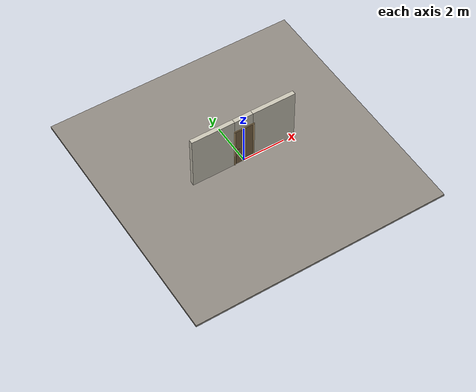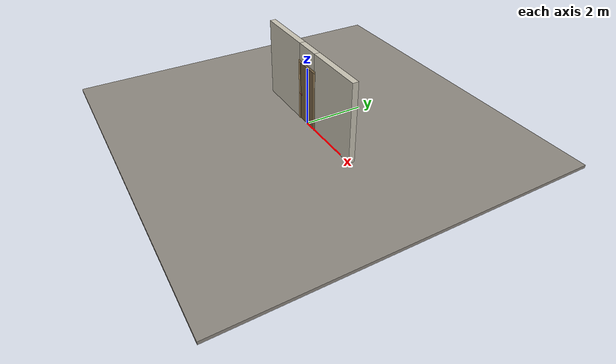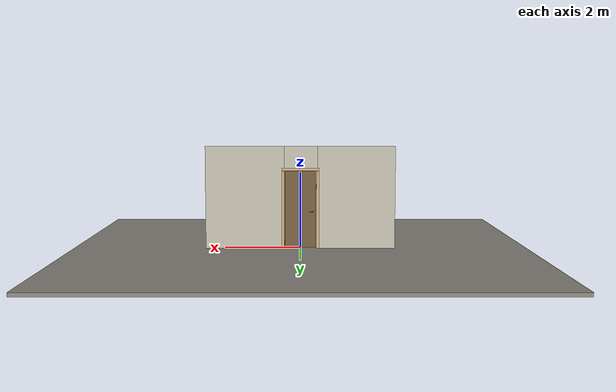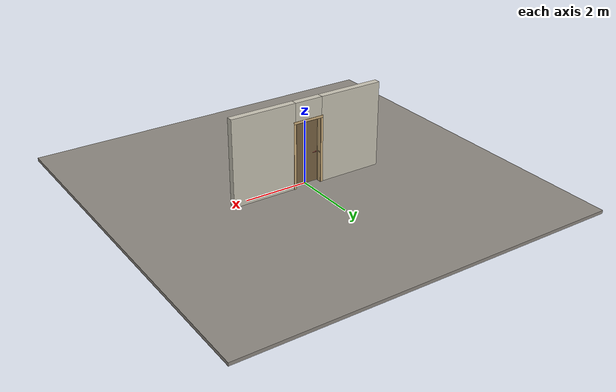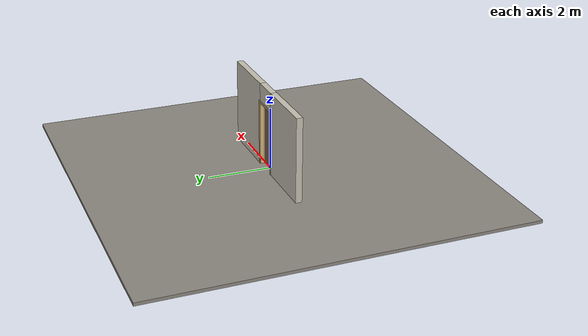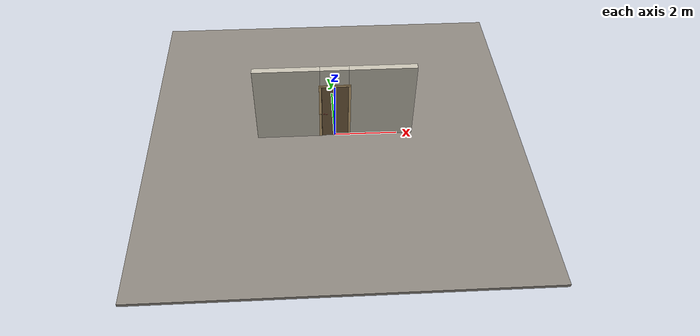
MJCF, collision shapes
<?xml version="1.0" ?>
<mujoco model="db0828_swing_single_full">
  <compiler angle="radian" meshdir="../../hardware" texturedir="../../textures" autolimits="true" inertiafromgeom="false"/>
  <option timestep="0.002" integrator="implicitfast" cone="elliptic" impratio="10" noslip_iterations="3">
    <flag multiccd="enable"/>
  </option>
  <size memory="16M"/>
  <default>
    <geom condim="4" solref="0.005 1" solimp="0.95 0.99 0.001"/>
    <joint solreflimit="0.005 1" solimplimit="0.95 0.99 0.001"/>
    <tendon solreflimit="0.005 1"/>
    <equality solref="0.002 1"/>
  </default>
  <visual>
    <headlight ambient="0.4 0.4 0.4" diffuse="0.7 0.7 0.7" specular="0.2 0.2 0.2"/>
    <quality shadowsize="4096"/>
    <map znear="0.01" zfar="60"/>
  </visual>
  <asset>
    <mesh name="coat_hook_d622d37ad0" file="coat_hook_d622d37ad0.obj"/>
    <mesh name="hinge_96510cf394" file="hinge_96510cf394.obj"/>
    <mesh name="hinge_jamb_7fd4ca52b2" file="hinge_jamb_7fd4ca52b2.obj"/>
    <mesh name="lever_57205841c3" file="lever_57205841c3.obj"/>
    <material name="mat_floor" rgba="0.55 0.53 0.5 1" specular="0.2" shininess="0.15" reflectance="0"/>
    <material name="mat_wall" rgba="0.78 0.76 0.7 1" specular="0.2" shininess="0.1" reflectance="0"/>
    <material name="mat_leaf" rgba="0.469 0.38 0.257 1" specular="0.2" shininess="0.45" reflectance="0"/>
    <material name="mat_leaf_louver" rgba="0.398 0.323 0.219 1" specular="0.2" shininess="0.4" reflectance="0"/>
    <material name="mat_hinge" rgba="0.65 0.66 0.68 1" specular="0.74" shininess="0.5" reflectance="0.36"/>
    <material name="mat_op_black_matte_metal" rgba="0.05 0.05 0.05 1" specular="0.38" shininess="0.3" reflectance="0.12"/>
    <material name="mat_trim" rgba="0.85 0.66 0.3 1" specular="0.8" shininess="0.75" reflectance="0.4"/>
    <material name="mat_bolt" rgba="0.85 0.66 0.3 1" specular="0.8" shininess="0.75" reflectance="0.4"/>
    <material name="mat_frame" rgba="0.82 0.7 0.5 1" specular="0.2" shininess="0.45" reflectance="0"/>
    <material name="mat_hook" rgba="0.9 0.9 0.92 1" specular="0.8" shininess="0.9" reflectance="0.4"/>
    <texture name="skybox" type="skybox" builtin="gradient" rgb1="0.6 0.7 0.85" rgb2="0.9 0.92 0.95" width="256" height="256"/>
  </asset>
  <worldbody>
    <light name="sun" pos="1.5 -2.5 4" dir="-0.3 0.5 -0.8" directional="true" diffuse="0.8 0.8 0.8" specular="0.3 0.3 0.3" castshadow="true"/>
    <light name="fill" pos="-1.5 2.5 3" dir="0.3 -0.5 -0.7" directional="true" diffuse="0.35 0.35 0.4" castshadow="false"/>
    <camera name="robot_view" pos="0 -2.466687 1.734312" xyaxes="1 0 0 0 0.26963 0.962964" fovy="52"/>
    <camera name="far_view" pos="0 2.617687 1.734312" xyaxes="-1 0 0 0 -0.26963 0.962964" fovy="52"/>
    <camera name="iso" pos="-1.932062 -2.059938 2.141063" xyaxes="0.741536 -0.670913 0 0.242917 0.268487 0.932151" fovy="46"/>
    <camera name="detail_handle" pos="-0.07 -0.8725 1.245" xyaxes="0.97561 0.219512 0 -0.070934 0.315262 0.94635" fovy="38"/>
    <geom name="floor" type="box" size="6 6 0.05" pos="0 0 -0.05" material="mat_floor" group="0" contype="1" conaffinity="1" friction="0.8 0.005 0.0001" density="2400"/>
    <geom name="wall_left" type="box" size="1.0205 0.1 1.35" pos="-1.4795 0.0755 1.35" material="mat_wall" group="0" contype="1" conaffinity="1" friction="0.6 0.005 0.0001" density="800"/>
    <geom name="wall_right" type="box" size="1.0355 0.1 1.35" pos="1.4645 0.0755 1.35" material="mat_wall" group="0" contype="1" conaffinity="1" friction="0.6 0.005 0.0001" density="800"/>
    <geom name="wall_header" type="box" size="0.444 0.1 0.303" pos="-0.015 0.0755 2.397" material="mat_wall" group="0" contype="1" conaffinity="1" friction="0.6 0.005 0.0001" density="800"/>
    <geom name="hinge_0_jamb" type="mesh" mesh="hinge_jamb_7fd4ca52b2" pos="0.407 -0.0245 0.259" quat="0 0 1 0" material="mat_hinge" group="1" contype="0" conaffinity="0" density="7850"/>
    <geom name="hinge_1_jamb" type="mesh" mesh="hinge_jamb_7fd4ca52b2" pos="0.407 -0.0245 1.025" quat="0 0 1 0" material="mat_hinge" group="1" contype="0" conaffinity="0" density="7850"/>
    <geom name="hinge_2_jamb" type="mesh" mesh="hinge_jamb_7fd4ca52b2" pos="0.407 -0.0245 1.861" quat="0 0 1 0" material="mat_hinge" group="1" contype="0" conaffinity="0" density="7850"/>
    <geom name="jamb_hinge" type="box" size="0.0095 0.1 1.0225" pos="0.4195 0.0755 1.0225" material="mat_frame" group="0" contype="1" conaffinity="1" friction="0.6 0.005 0.0001" density="400"/>
    <geom name="strike_965_wall_n" type="box" size="0.0245 0.083825 0.0167" pos="-0.4345 0.091675 0.965" material="mat_frame" group="0" contype="1" conaffinity="1" friction="0.6 0.005 0.0001" density="400"/>
    <geom name="strike_965_wall_p" type="box" size="0.0245 0.008 0.0167" pos="-0.4345 -0.01585 0.965" material="mat_frame" group="0" contype="1" conaffinity="1" friction="0.6 0.005 0.0001" density="400"/>
    <geom name="strike_965_ramp" type="box" size="0.0245 0.01649 0.0167" pos="-0.439136 -0.028673 0.965" quat="0.977148 0 0 -0.212558" material="mat_frame" group="0" contype="1" conaffinity="1" friction="0.12 0.005 0.0001" density="400"/>
    <geom name="strike_965_back" type="box" size="0.01615 0.00785 0.0167" pos="-0.44285 0 0.965" material="mat_frame" group="0" contype="1" conaffinity="1" friction="0.6 0.005 0.0001" density="400"/>
    <geom name="jamb_strike_0" type="box" size="0.0245 0.1 0.47415" pos="-0.4345 0.0755 0.47415" material="mat_frame" group="0" contype="1" conaffinity="1" friction="0.6 0.005 0.0001" density="400"/>
    <geom name="jamb_strike_1" type="box" size="0.0245 0.1 0.53165" pos="-0.4345 0.0755 1.51335" material="mat_frame" group="0" contype="1" conaffinity="1" friction="0.6 0.005 0.0001" density="400"/>
    <geom name="jamb_head" type="box" size="0.444 0.1 0.0095" pos="-0.015 0.0755 2.0545" material="mat_frame" group="0" contype="1" conaffinity="1" friction="0.6 0.005 0.0001" density="400"/>
    <geom name="head_stud" type="box" size="0.444 0.1 0.015" pos="-0.015 0.0755 2.079" material="mat_wall" group="0" contype="1" conaffinity="1" friction="0.6 0.005 0.0001" density="500"/>
    <geom name="stop_hinge" type="box" size="0.0055 0.016 1.0225" pos="0.4045 0.034 1.0225" material="mat_frame" group="0" contype="1" conaffinity="1" friction="0.6 0.005 0.0001" density="400"/>
    <geom name="stop_strike" type="box" size="0.0055 0.016 1.0225" pos="-0.4045 0.034 1.0225" material="mat_frame" group="0" contype="1" conaffinity="1" friction="0.6 0.005 0.0001" density="400"/>
    <geom name="stop_head" type="box" size="0.41 0.016 0.0055" pos="0 0.034 2.0395" material="mat_frame" group="0" contype="1" conaffinity="1" friction="0.6 0.005 0.0001" density="400"/>
    <geom name="casing_l_n" type="box" size="0.035 0.008 1.032" pos="-0.459 -0.0325 1.0225" material="mat_frame" group="2" contype="0" conaffinity="0" density="400"/>
    <geom name="casing_r_n" type="box" size="0.035 0.008 1.032" pos="0.459 -0.0325 1.0225" material="mat_frame" group="2" contype="0" conaffinity="0" density="400"/>
    <geom name="casing_h_n" type="box" size="0.494 0.008 0.035" pos="0 -0.0325 2.094" material="mat_frame" group="2" contype="0" conaffinity="0" density="400"/>
    <geom name="casing_l_p" type="box" size="0.035 0.008 1.032" pos="-0.459 0.1835 1.0225" material="mat_frame" group="2" contype="0" conaffinity="0" density="400"/>
    <geom name="casing_r_p" type="box" size="0.035 0.008 1.032" pos="0.459 0.1835 1.0225" material="mat_frame" group="2" contype="0" conaffinity="0" density="400"/>
    <geom name="casing_h_p" type="box" size="0.494 0.008 0.035" pos="0 0.1835 2.094" material="mat_frame" group="2" contype="0" conaffinity="0" density="400"/>
    <site name="approach_point" pos="0 -1.5 0" quat="1 0 0 0" size="0.05" rgba="0.2 0.9 0.2 0.5" group="4"/>
    <site name="goal_point" pos="0 1.5 0" quat="1 0 0 0" size="0.05" rgba="0.2 0.9 0.2 0.5" group="4"/>
    <site name="door_plane_center" pos="0 0 1.0225" quat="1 0 0 0" size="0.02" rgba="0.2 0.9 0.2 0.5" group="4"/>
    <body name="leaf" pos="0.41 0 0">
      <inertial pos="-0.402659 -0.000121 1.02734" mass="24.828351" quat="0.500251 -0.499467 0.500655 0.499627" diaginertia="1.414566551 8.585338296 9.994267288"/>
      <joint name="leaf_hinge" type="hinge" axis="0 0 1" pos="-0.003 -0.0245 0" limited="true" range="0 2.094395" damping="0.210326" frictionloss="0.31633" armature="0.02"/>
      <geom name="leaf_slab" type="box" size="0.4065 0.0175 1.016" pos="-0.4095 0 1.025" material="mat_leaf" group="0" contype="1" conaffinity="1" friction="0.35 0.005 0.0001" density="1"/>
      <geom name="leaf_louver_0" type="box" size="0.3165 0.002 0.026984" pos="-0.4095 0 1.091339" quat="0.953717 0.300706 0 0" material="mat_leaf_louver" group="1" contype="0" conaffinity="0" density="1"/>
      <geom name="leaf_louver_1" type="box" size="0.3165 0.002 0.026984" pos="-0.4095 0 1.142736" quat="0.953717 0.300706 0 0" material="mat_leaf_louver" group="1" contype="0" conaffinity="0" density="1"/>
      <geom name="leaf_louver_2" type="box" size="0.3165 0.002 0.026984" pos="-0.4095 0 1.194134" quat="0.953717 0.300706 0 0" material="mat_leaf_louver" group="1" contype="0" conaffinity="0" density="1"/>
      <geom name="leaf_louver_3" type="box" size="0.3165 0.002 0.026984" pos="-0.4095 0 1.245532" quat="0.953717 0.300706 0 0" material="mat_leaf_louver" group="1" contype="0" conaffinity="0" density="1"/>
      <geom name="leaf_louver_4" type="box" size="0.3165 0.002 0.026984" pos="-0.4095 0 1.296929" quat="0.953717 0.300706 0 0" material="mat_leaf_louver" group="1" contype="0" conaffinity="0" density="1"/>
      <geom name="leaf_louver_5" type="box" size="0.3165 0.002 0.026984" pos="-0.4095 0 1.348327" quat="0.953717 0.300706 0 0" material="mat_leaf_louver" group="1" contype="0" conaffinity="0" density="1"/>
      <geom name="leaf_louver_6" type="box" size="0.3165 0.002 0.026984" pos="-0.4095 0 1.399725" quat="0.953717 0.300706 0 0" material="mat_leaf_louver" group="1" contype="0" conaffinity="0" density="1"/>
      <geom name="leaf_louver_7" type="box" size="0.3165 0.002 0.026984" pos="-0.4095 0 1.451122" quat="0.953717 0.300706 0 0" material="mat_leaf_louver" group="1" contype="0" conaffinity="0" density="1"/>
      <geom name="leaf_louver_8" type="box" size="0.3165 0.002 0.026984" pos="-0.4095 0 1.50252" quat="0.953717 0.300706 0 0" material="mat_leaf_louver" group="1" contype="0" conaffinity="0" density="1"/>
      <geom name="leaf_louver_9" type="box" size="0.3165 0.002 0.026984" pos="-0.4095 0 1.553918" quat="0.953717 0.300706 0 0" material="mat_leaf_louver" group="1" contype="0" conaffinity="0" density="1"/>
      <geom name="leaf_louver_10" type="box" size="0.3165 0.002 0.026984" pos="-0.4095 0 1.605315" quat="0.953717 0.300706 0 0" material="mat_leaf_louver" group="1" contype="0" conaffinity="0" density="1"/>
      <geom name="leaf_louver_11" type="box" size="0.3165 0.002 0.026984" pos="-0.4095 0 1.656713" quat="0.953717 0.300706 0 0" material="mat_leaf_louver" group="1" contype="0" conaffinity="0" density="1"/>
      <geom name="leaf_louver_12" type="box" size="0.3165 0.002 0.026984" pos="-0.4095 0 1.708111" quat="0.953717 0.300706 0 0" material="mat_leaf_louver" group="1" contype="0" conaffinity="0" density="1"/>
      <geom name="leaf_louver_13" type="box" size="0.3165 0.002 0.026984" pos="-0.4095 0 1.759508" quat="0.953717 0.300706 0 0" material="mat_leaf_louver" group="1" contype="0" conaffinity="0" density="1"/>
      <geom name="leaf_louver_14" type="box" size="0.3165 0.002 0.026984" pos="-0.4095 0 1.810906" quat="0.953717 0.300706 0 0" material="mat_leaf_louver" group="1" contype="0" conaffinity="0" density="1"/>
      <geom name="leaf_louver_15" type="box" size="0.3165 0.002 0.026984" pos="-0.4095 0 1.862304" quat="0.953717 0.300706 0 0" material="mat_leaf_louver" group="1" contype="0" conaffinity="0" density="1"/>
      <geom name="leaf_louver_16" type="box" size="0.3165 0.002 0.026984" pos="-0.4095 0 1.913701" quat="0.953717 0.300706 0 0" material="mat_leaf_louver" group="1" contype="0" conaffinity="0" density="1"/>
      <geom name="hinge_0" type="mesh" mesh="hinge_96510cf394" pos="-0.003 -0.0245 0.259" quat="0 0 1 0" material="mat_hinge" group="1" contype="0" conaffinity="0" density="7850"/>
      <geom name="hinge_1" type="mesh" mesh="hinge_96510cf394" pos="-0.003 -0.0245 1.025" quat="0 0 1 0" material="mat_hinge" group="1" contype="0" conaffinity="0" density="7850"/>
      <geom name="hinge_2" type="mesh" mesh="hinge_96510cf394" pos="-0.003 -0.0245 1.861" quat="0 0 1 0" material="mat_hinge" group="1" contype="0" conaffinity="0" density="7850"/>
      <geom name="leaf_latch_bolt_faceplate" type="box" size="0.0006 0.01235 0.0267" pos="-0.8154 0 0.965" material="mat_bolt" group="1" contype="0" conaffinity="0" density="8500"/>
      <geom name="coat_hook" type="mesh" mesh="coat_hook_d622d37ad0" pos="-0.4095 0.0175 1.691" quat="0 0 0.707107 0.707107" material="mat_hook" group="2" contype="0" conaffinity="0" density="7000"/>
      <site name="leaf_edge_mid" pos="-0.816 0 1.016" quat="1 0 0 0" size="0.02" rgba="0.2 0.9 0.2 0.5" group="4"/>
      <body name="leaf_handle" pos="-0.756 0 0.965">
        <inertial pos="0.018609 0 0" mass="0.798454" quat="0.707107 0 0 -0.707107" diaginertia="0.001003601 0.002236545 0.003135681"/>
        <joint name="leaf_handle_hinge" type="hinge" axis="0 1 0" limited="true" range="0 0.87" damping="0.212416" frictionloss="0.042" stiffness="1" springref="-0.35" armature="0.01"/>
        <geom name="leaf_handle_spindle" type="cylinder" size="0.006 0.0255" pos="0 0 0" quat="0.707107 -0.707107 0 0" material="mat_op_black_matte_metal" group="1" contype="0" conaffinity="0" density="7850"/>
        <geom name="leaf_handle_lever_n" type="mesh" mesh="lever_57205841c3" pos="0 -0.0175 0" quat="0 0 -0.707107 0.707107" material="mat_op_black_matte_metal" group="1" contype="0" conaffinity="0" density="3000"/>
        <geom name="leaf_handle_lever_col_n" type="capsule" size="0.007 0.053" pos="0.06 -0.0725 0" quat="0.707107 0 0.707107 0" material="mat_op_black_matte_metal" group="3" contype="1" conaffinity="1" rgba="0.8 0.3 0.3 0.25" friction="0.7 0.01 0.0001" density="3000"/>
        <geom name="leaf_handle_hub_col_n" type="cylinder" size="0.012 0.022" pos="0 -0.0475 0" quat="0.707107 -0.707107 0 0" material="mat_op_black_matte_metal" group="3" contype="1" conaffinity="1" rgba="0.8 0.3 0.3 0.25" friction="0.6 0.005 0.0001" density="3000"/>
        <geom name="leaf_handle_lever_p" type="mesh" mesh="lever_57205841c3" pos="0 0.0175 0" quat="0 0 0.707107 0.707107" material="mat_op_black_matte_metal" group="1" contype="0" conaffinity="0" density="3000"/>
        <geom name="leaf_handle_lever_col_p" type="capsule" size="0.007 0.053" pos="0.06 0.0725 0" quat="0.707107 0 0.707107 0" material="mat_op_black_matte_metal" group="3" contype="1" conaffinity="1" rgba="0.8 0.3 0.3 0.25" friction="0.7 0.01 0.0001" density="3000"/>
        <geom name="leaf_handle_hub_col_p" type="cylinder" size="0.012 0.022" pos="0 0.0475 0" quat="0.707107 -0.707107 0 0" material="mat_op_black_matte_metal" group="3" contype="1" conaffinity="1" rgba="0.8 0.3 0.3 0.25" friction="0.6 0.005 0.0001" density="3000"/>
        <site name="leaf_handle_grip_n" pos="0.096 -0.0725 0" quat="1 0 0 0" size="0.012" rgba="0.2 0.9 0.2 0.5" group="4"/>
        <site name="leaf_handle_grip_p" pos="0.096 0.0725 0" quat="1 0 0 0" size="0.012" rgba="0.2 0.9 0.2 0.5" group="4"/>
      </body>
      <body name="leaf_latch_bolt" pos="-0.816 0 0.965">
        <inertial pos="0.00865 0 0" mass="0.041419" quat="0.92388 0.382683 0 0" diaginertia="0.000000798 0.000005598 0.000005598"/>
        <joint name="leaf_latch_bolt_slide" type="slide" axis="1 0 0" limited="true" range="0 0.0127" damping="2" frictionloss="0.3" stiffness="300" springref="-0.008333" armature="0.1"/>
        <geom name="leaf_latch_bolt_capsule" type="capsule" size="0.00635 0.015" pos="0.00865 0 0" quat="0.707107 0 -0.707107 0" material="mat_bolt" group="0" contype="1" conaffinity="1" friction="0.2 0.005 0.0001" density="8500"/>
      </body>
    </body>
  </worldbody>
  <tendon>
    <fixed name="leaf_latch_bolt_coupling" limited="true" range="0 10">
      <joint joint="leaf_latch_bolt_slide" coef="1"/>
      <joint joint="leaf_handle_hinge" coef="-0.015679"/>
    </fixed>
  </tendon>
  <sensor>
    <jointpos name="leaf_hinge_pos" joint="leaf_hinge"/>
    <jointvel name="leaf_hinge_vel" joint="leaf_hinge"/>
    <jointpos name="leaf_handle_hinge_pos" joint="leaf_handle_hinge"/>
    <jointvel name="leaf_handle_hinge_vel" joint="leaf_handle_hinge"/>
    <jointpos name="leaf_latch_bolt_slide_pos" joint="leaf_latch_bolt_slide"/>
    <jointvel name="leaf_latch_bolt_slide_vel" joint="leaf_latch_bolt_slide"/>
  </sensor>
</mujoco>
